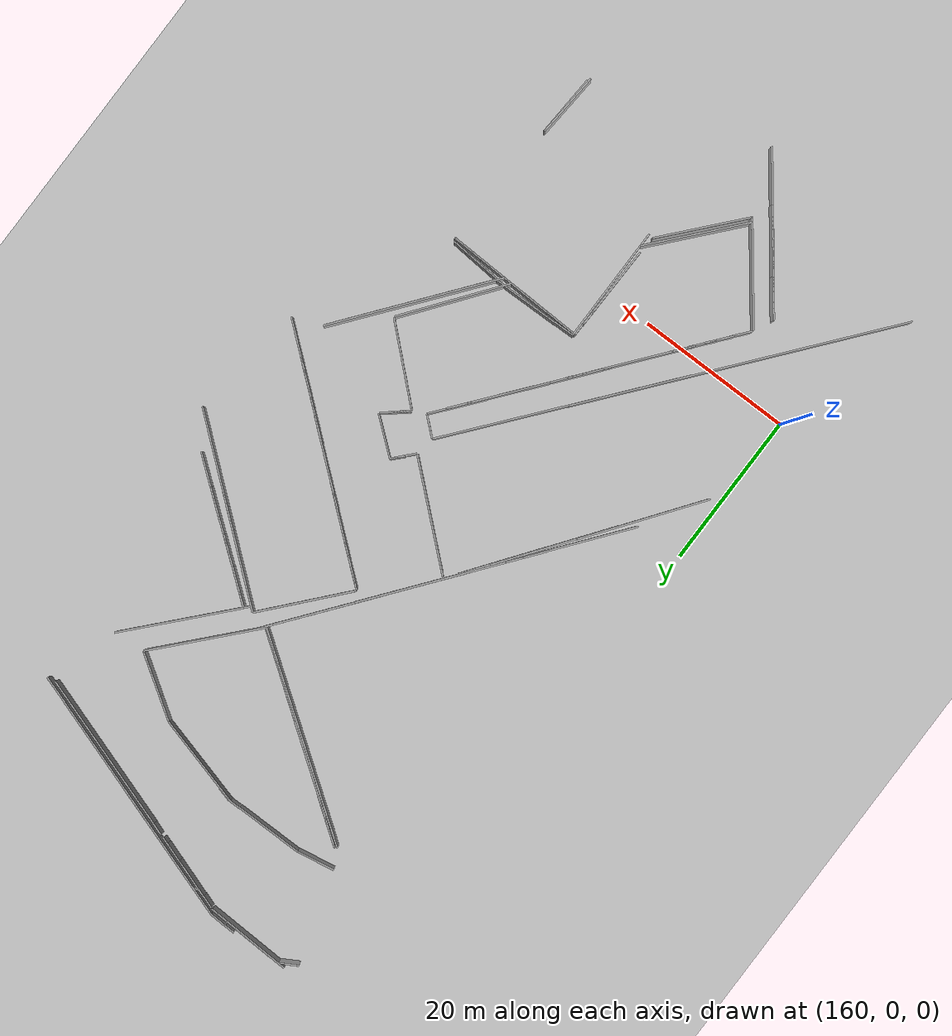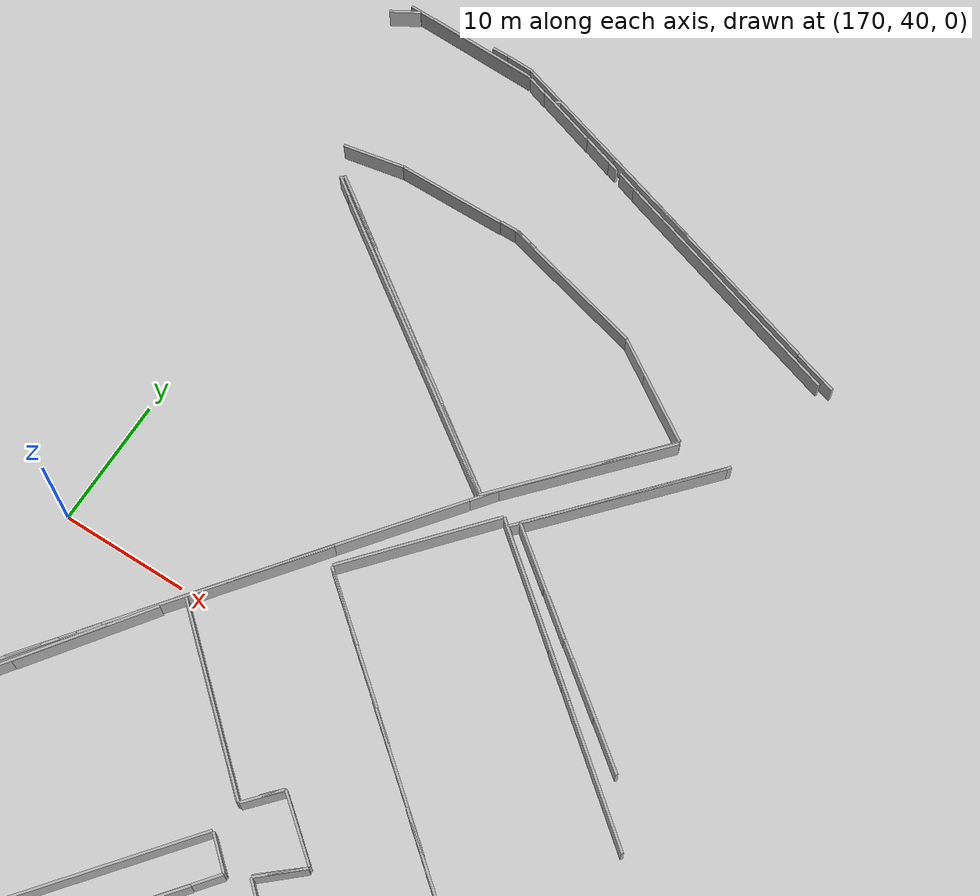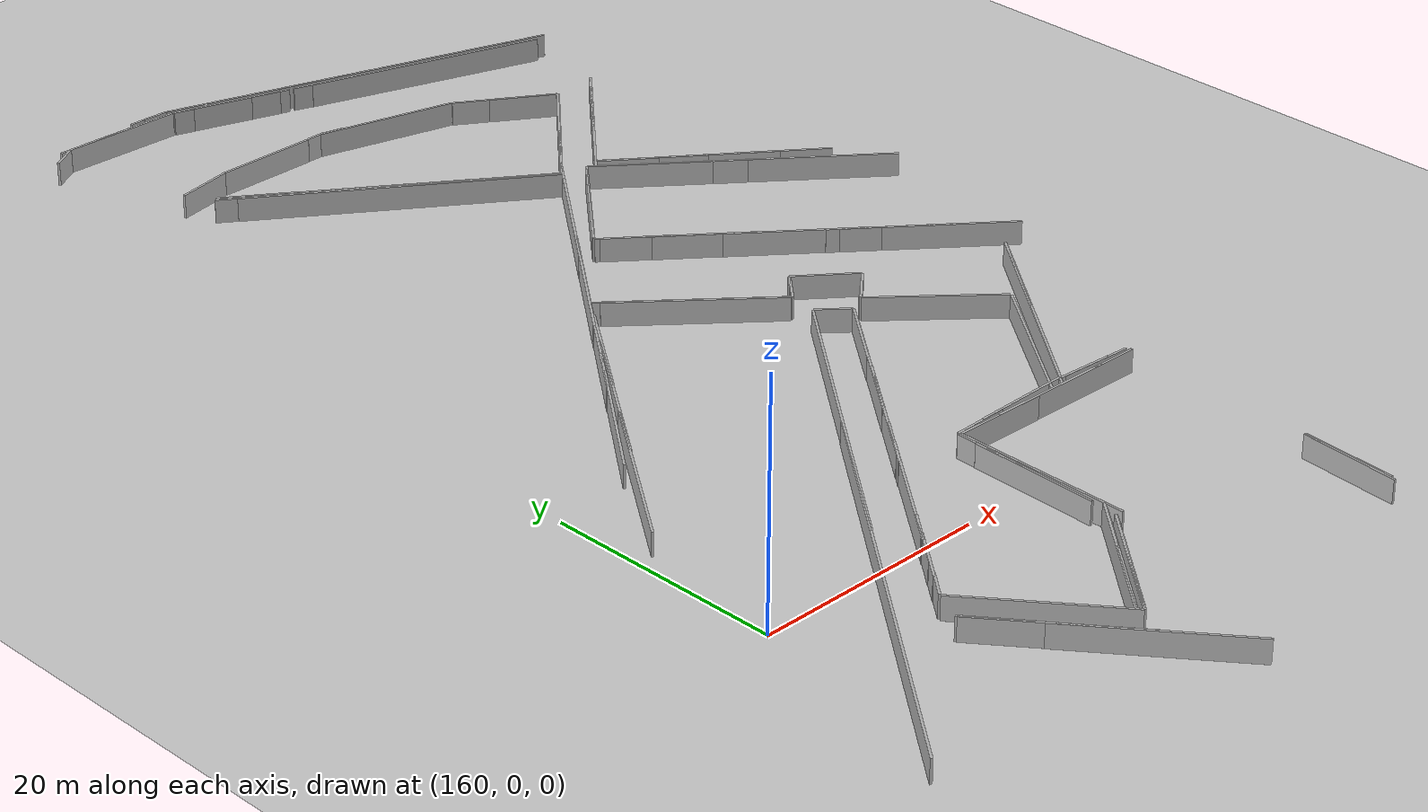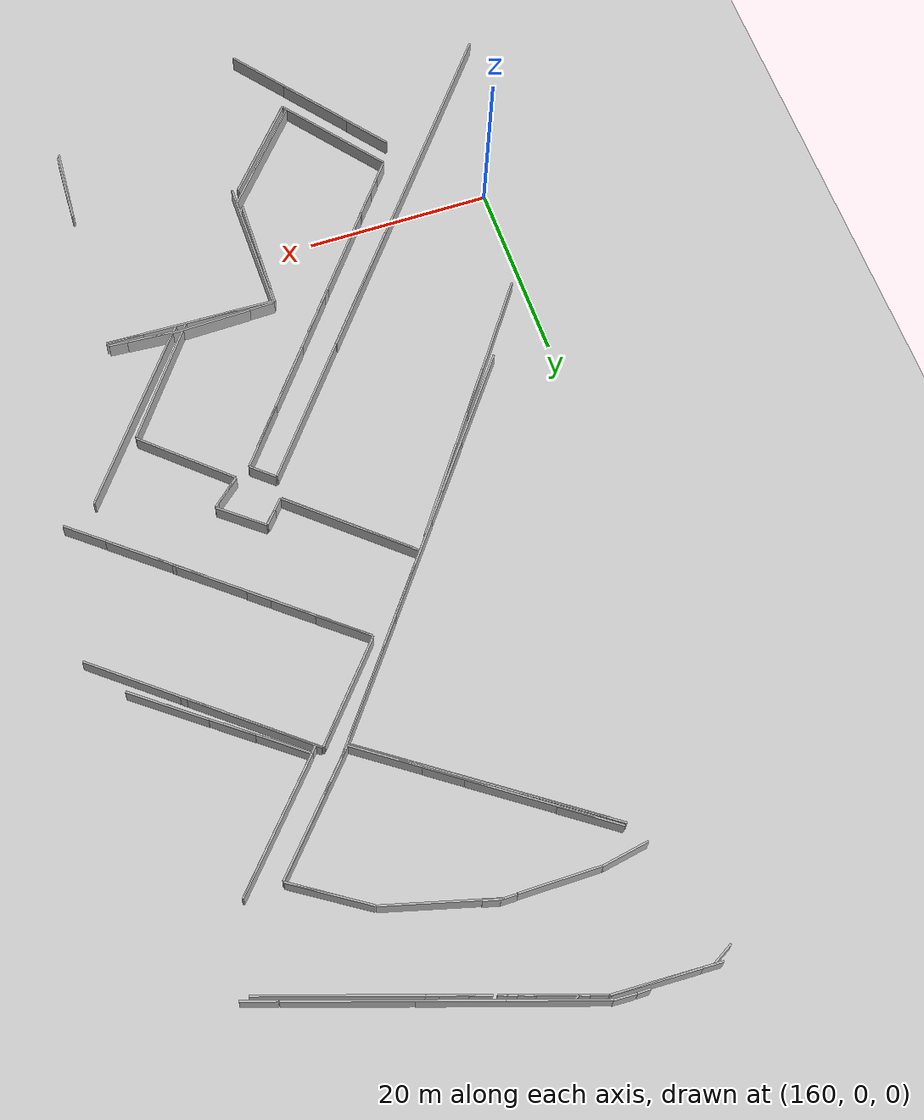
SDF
<sdf version="1.7">
 <world name="slam_world">
  <model name="ground_plane">
   <static>1</static>
   <link name="link">
    <collision name="collision">
     <geometry><plane><normal>0 0 1</normal><size>100 100</size></plane></geometry>
    </collision>
    <visual name="visual">
     <geometry><plane><normal>0 0 1</normal><size>100 100</size></plane></geometry>
     <material>
      <ambient>0.8 0.8 0.8 1</ambient>
      <diffuse>0.8 0.8 0.8 1</diffuse>
      <specular>0.8 0.8 0.8 1</specular>
     </material>
    </visual>
   </link>
  </model>
  <model name="wall_5">
   <static>1</static>
   <pose>182.226 86.725 1 0 -0 0.661043</pose>
   <link name="link">
    <collision name="collision"><geometry><box><size>0.570088 0.2 2</size></box></geometry></collision>
    <visual name="visual">
     <geometry><box><size>0.570088 0.2 2</size></box></geometry>
     <material><ambient>0.5 0.5 0.5 1</ambient><diffuse>0.7 0.7 0.7 1</diffuse></material>
    </visual>
   </link>
  </model>
  <model name="wall_10">
   <static>1</static>
   <pose>183.101 64.65 1 0 0 -0.611022</pose>
   <link name="link">
    <collision name="collision"><geometry><box><size>27.7146 0.2 2</size></box></geometry></collision>
    <visual name="visual">
     <geometry><box><size>27.7146 0.2 2</size></box></geometry>
     <material><ambient>0.5 0.5 0.5 1</ambient><diffuse>0.7 0.7 0.7 1</diffuse></material>
    </visual>
   </link>
  </model>
  <model name="wall_12">
   <static>1</static>
   <pose>168.326 -2.675 1 0 -0 0.889225</pose>
   <link name="link">
    <collision name="collision"><geometry><box><size>42.3006 0.2 2</size></box></geometry></collision>
    <visual name="visual">
     <geometry><box><size>42.3006 0.2 2</size></box></geometry>
     <material><ambient>0.5 0.5 0.5 1</ambient><diffuse>0.7 0.7 0.7 1</diffuse></material>
    </visual>
   </link>
  </model>
  <model name="wall_23">
   <static>1</static>
   <pose>173.651 -12.075 1 0 0 -0.908779</pose>
   <link name="link">
    <collision name="collision"><geometry><box><size>13.5023 0.2 2</size></box></geometry></collision>
    <visual name="visual">
     <geometry><box><size>13.5023 0.2 2</size></box></geometry>
     <material><ambient>0.5 0.5 0.5 1</ambient><diffuse>0.7 0.7 0.7 1</diffuse></material>
    </visual>
   </link>
  </model>
  <model name="wall_32">
   <static>1</static>
   <pose>203.951 15.075 1 0 -0 0.907209</pose>
   <link name="link">
    <collision name="collision"><geometry><box><size>22.4045 0.2 2</size></box></geometry></collision>
    <visual name="visual">
     <geometry><box><size>22.4045 0.2 2</size></box></geometry>
     <material><ambient>0.5 0.5 0.5 1</ambient><diffuse>0.7 0.7 0.7 1</diffuse></material>
    </visual>
   </link>
  </model>
  <model name="wall_33">
   <static>1</static>
   <pose>200.326 12.05 1 0 -0 0.924542</pose>
   <link name="link">
    <collision name="collision"><geometry><box><size>14.5301 0.2 2</size></box></geometry></collision>
    <visual name="visual">
     <geometry><box><size>14.5301 0.2 2</size></box></geometry>
     <material><ambient>0.5 0.5 0.5 1</ambient><diffuse>0.7 0.7 0.7 1</diffuse></material>
    </visual>
   </link>
  </model>
  <model name="wall_34">
   <static>1</static>
   <pose>180.451 38.5 1 0 -0 0.909025</pose>
   <link name="link">
    <collision name="collision"><geometry><box><size>24.084 0.2 2</size></box></geometry></collision>
    <visual name="visual">
     <geometry><box><size>24.084 0.2 2</size></box></geometry>
     <material><ambient>0.5 0.5 0.5 1</ambient><diffuse>0.7 0.7 0.7 1</diffuse></material>
    </visual>
   </link>
  </model>
  <model name="wall_37">
   <static>1</static>
   <pose>202.376 51.8 1 0 0 -0.682488</pose>
   <link name="link">
    <collision name="collision"><geometry><box><size>14.1107 0.2 2</size></box></geometry></collision>
    <visual name="visual">
     <geometry><box><size>14.1107 0.2 2</size></box></geometry>
     <material><ambient>0.5 0.5 0.5 1</ambient><diffuse>0.7 0.7 0.7 1</diffuse></material>
    </visual>
   </link>
  </model>
  <model name="wall_46">
   <static>1</static>
   <pose>181.951 -11.775 1 0 -0 0.855778</pose>
   <link name="link">
    <collision name="collision"><geometry><box><size>13.5747 0.2 2</size></box></geometry></collision>
    <visual name="visual">
     <geometry><box><size>13.5747 0.2 2</size></box></geometry>
     <material><ambient>0.5 0.5 0.5 1</ambient><diffuse>0.7 0.7 0.7 1</diffuse></material>
    </visual>
   </link>
  </model>
  <model name="wall_50">
   <static>1</static>
   <pose>200.851 80.325 1 0 0 -0.316411</pose>
   <link name="link">
    <collision name="collision"><geometry><box><size>20.729 0.2 2</size></box></geometry></collision>
    <visual name="visual">
     <geometry><box><size>20.729 0.2 2</size></box></geometry>
     <material><ambient>0.5 0.5 0.5 1</ambient><diffuse>0.7 0.7 0.7 1</diffuse></material>
    </visual>
   </link>
  </model>
  <model name="wall_57">
   <static>1</static>
   <pose>186.926 34.275 1 0 0 -0.715419</pose>
   <link name="link">
    <collision name="collision"><geometry><box><size>15.1692 0.2 2</size></box></geometry></collision>
    <visual name="visual">
     <geometry><box><size>15.1692 0.2 2</size></box></geometry>
     <material><ambient>0.5 0.5 0.5 1</ambient><diffuse>0.7 0.7 0.7 1</diffuse></material>
    </visual>
   </link>
  </model>
  <model name="wall_72">
   <static>1</static>
   <pose>198.351 81.675 1 0 0 -0.316411</pose>
   <link name="link">
    <collision name="collision"><geometry><box><size>20.729 0.2 2</size></box></geometry></collision>
    <visual name="visual">
     <geometry><box><size>20.729 0.2 2</size></box></geometry>
     <material><ambient>0.5 0.5 0.5 1</ambient><diffuse>0.7 0.7 0.7 1</diffuse></material>
    </visual>
   </link>
  </model>
  <model name="wall_73">
   <static>1</static>
   <pose>171.551 27 1 0 -0 0.909753</pose>
   <link name="link">
    <collision name="collision"><geometry><box><size>17.1026 0.2 2</size></box></geometry></collision>
    <visual name="visual">
     <geometry><box><size>17.1026 0.2 2</size></box></geometry>
     <material><ambient>0.5 0.5 0.5 1</ambient><diffuse>0.7 0.7 0.7 1</diffuse></material>
    </visual>
   </link>
  </model>
  <model name="wall_83">
   <static>1</static>
   <pose>182.251 14.425 1 0 -0 0.889167</pose>
   <link name="link">
    <collision name="collision"><geometry><box><size>31.7431 0.2 2</size></box></geometry></collision>
    <visual name="visual">
     <geometry><box><size>31.7431 0.2 2</size></box></geometry>
     <material><ambient>0.5 0.5 0.5 1</ambient><diffuse>0.7 0.7 0.7 1</diffuse></material>
    </visual>
   </link>
  </model>
  <model name="wall_85">
   <static>1</static>
   <pose>186.476 46.275 1 0 -0 0.909042</pose>
   <link name="link">
    <collision name="collision"><geometry><box><size>24.6541 0.2 2</size></box></geometry></collision>
    <visual name="visual">
     <geometry><box><size>24.6541 0.2 2</size></box></geometry>
     <material><ambient>0.5 0.5 0.5 1</ambient><diffuse>0.7 0.7 0.7 1</diffuse></material>
    </visual>
   </link>
  </model>
  <model name="wall_115">
   <static>1</static>
   <pose>179.651 67.35 1 0 0 -0.613915</pose>
   <link name="link">
    <collision name="collision"><geometry><box><size>12.8456 0.2 2</size></box></geometry></collision>
    <visual name="visual">
     <geometry><box><size>12.8456 0.2 2</size></box></geometry>
     <material><ambient>0.5 0.5 0.5 1</ambient><diffuse>0.7 0.7 0.7 1</diffuse></material>
    </visual>
   </link>
  </model>
  <model name="wall_122">
   <static>1</static>
   <pose>186.401 -0.825 1 0 -0 1.5708</pose>
   <link name="link">
    <collision name="collision"><geometry><box><size>15.15 0.2 2</size></box></geometry></collision>
    <visual name="visual">
     <geometry><box><size>15.15 0.2 2</size></box></geometry>
     <material><ambient>0.5 0.5 0.5 1</ambient><diffuse>0.7 0.7 0.7 1</diffuse></material>
    </visual>
   </link>
  </model>
  <model name="wall_128">
   <static>1</static>
   <pose>189.176 17.95 1 0 -0 0.893014</pose>
   <link name="link">
    <collision name="collision"><geometry><box><size>12.8375 0.2 2</size></box></geometry></collision>
    <visual name="visual">
     <geometry><box><size>12.8375 0.2 2</size></box></geometry>
     <material><ambient>0.5 0.5 0.5 1</ambient><diffuse>0.7 0.7 0.7 1</diffuse></material>
    </visual>
   </link>
  </model>
  <model name="wall_133">
   <static>1</static>
   <pose>199.426 62.275 1 0 -0 0.837238</pose>
   <link name="link">
    <collision name="collision"><geometry><box><size>15.0108 0.2 2</size></box></geometry></collision>
    <visual name="visual">
     <geometry><box><size>15.0108 0.2 2</size></box></geometry>
     <material><ambient>0.5 0.5 0.5 1</ambient><diffuse>0.7 0.7 0.7 1</diffuse></material>
    </visual>
   </link>
  </model>
  <model name="wall_141">
   <static>1</static>
   <pose>192.676 51.5 1 0 -0 0.855705</pose>
   <link name="link">
    <collision name="collision"><geometry><box><size>12.5822 0.2 2</size></box></geometry></collision>
    <visual name="visual">
     <geometry><box><size>12.5822 0.2 2</size></box></geometry>
     <material><ambient>0.5 0.5 0.5 1</ambient><diffuse>0.7 0.7 0.7 1</diffuse></material>
    </visual>
   </link>
  </model>
  <model name="wall_142">
   <static>1</static>
   <pose>188.801 60.85 1 0 0 -0.613638</pose>
   <link name="link">
    <collision name="collision"><geometry><box><size>14.0663 0.2 2</size></box></geometry></collision>
    <visual name="visual">
     <geometry><box><size>14.0663 0.2 2</size></box></geometry>
     <material><ambient>0.5 0.5 0.5 1</ambient><diffuse>0.7 0.7 0.7 1</diffuse></material>
    </visual>
   </link>
  </model>
  <model name="wall_143">
   <static>1</static>
   <pose>203.276 62.35 1 0 -0 0.837038</pose>
   <link name="link">
    <collision name="collision"><geometry><box><size>15.7541 0.2 2</size></box></geometry></collision>
    <visual name="visual">
     <geometry><box><size>15.7541 0.2 2</size></box></geometry>
     <material><ambient>0.5 0.5 0.5 1</ambient><diffuse>0.7 0.7 0.7 1</diffuse></material>
    </visual>
   </link>
  </model>
  <model name="wall_148">
   <static>1</static>
   <pose>172.576 -14.675 1 0 0 -0.909115</pose>
   <link name="link">
    <collision name="collision"><geometry><box><size>13.7523 0.2 2</size></box></geometry></collision>
    <visual name="visual">
     <geometry><box><size>13.7523 0.2 2</size></box></geometry>
     <material><ambient>0.5 0.5 0.5 1</ambient><diffuse>0.7 0.7 0.7 1</diffuse></material>
    </visual>
   </link>
  </model>
  <model name="wall_157">
   <static>1</static>
   <pose>187.676 85.175 1 0 0 -0.314818</pose>
   <link name="link">
    <collision name="collision"><geometry><box><size>18.2468 0.2 2</size></box></geometry></collision>
    <visual name="visual">
     <geometry><box><size>18.2468 0.2 2</size></box></geometry>
     <material><ambient>0.5 0.5 0.5 1</ambient><diffuse>0.7 0.7 0.7 1</diffuse></material>
    </visual>
   </link>
  </model>
  <model name="wall_158">
   <static>1</static>
   <pose>185.026 12.75 1 0 -0 0.893014</pose>
   <link name="link">
    <collision name="collision"><geometry><box><size>12.8375 0.2 2</size></box></geometry></collision>
    <visual name="visual">
     <geometry><box><size>12.8375 0.2 2</size></box></geometry>
     <material><ambient>0.5 0.5 0.5 1</ambient><diffuse>0.7 0.7 0.7 1</diffuse></material>
    </visual>
   </link>
  </model>
  <model name="wall_170">
   <static>1</static>
   <pose>200.576 36.775 1 0 0 -0.683838</pose>
   <link name="link">
    <collision name="collision"><geometry><box><size>11.1591 0.2 2</size></box></geometry></collision>
    <visual name="visual">
     <geometry><box><size>11.1591 0.2 2</size></box></geometry>
     <material><ambient>0.5 0.5 0.5 1</ambient><diffuse>0.7 0.7 0.7 1</diffuse></material>
    </visual>
   </link>
  </model>
  <model name="wall_173">
   <static>1</static>
   <pose>181.726 -12.1 1 0 -0 0.854924</pose>
   <link name="link">
    <collision name="collision"><geometry><box><size>12.7233 0.2 2</size></box></geometry></collision>
    <visual name="visual">
     <geometry><box><size>12.7233 0.2 2</size></box></geometry>
     <material><ambient>0.5 0.5 0.5 1</ambient><diffuse>0.7 0.7 0.7 1</diffuse></material>
    </visual>
   </link>
  </model>
  <model name="wall_179">
   <static>1</static>
   <pose>201.626 53.725 1 0 0 -0.661997</pose>
   <link name="link">
    <collision name="collision"><geometry><box><size>9.19157 0.2 2</size></box></geometry></collision>
    <visual name="visual">
     <geometry><box><size>9.19157 0.2 2</size></box></geometry>
     <material><ambient>0.5 0.5 0.5 1</ambient><diffuse>0.7 0.7 0.7 1</diffuse></material>
    </visual>
   </link>
  </model>
  <model name="wall_181">
   <static>1</static>
   <pose>197.526 6.225 1 0 0 -0.031568</pose>
   <link name="link">
    <collision name="collision"><geometry><box><size>14.2571 0.2 2</size></box></geometry></collision>
    <visual name="visual">
     <geometry><box><size>14.2571 0.2 2</size></box></geometry>
     <material><ambient>0.5 0.5 0.5 1</ambient><diffuse>0.7 0.7 0.7 1</diffuse></material>
    </visual>
   </link>
  </model>
  <model name="wall_182">
   <static>1</static>
   <pose>209.976 77.85 1 0 0 -0.308651</pose>
   <link name="link">
    <collision name="collision"><geometry><box><size>3.62112 0.2 2</size></box></geometry></collision>
    <visual name="visual">
     <geometry><box><size>3.62112 0.2 2</size></box></geometry>
     <material><ambient>0.5 0.5 0.5 1</ambient><diffuse>0.7 0.7 0.7 1</diffuse></material>
    </visual>
   </link>
  </model>
  <model name="wall_187">
   <static>1</static>
   <pose>200.501 21.775 1 0 0 -0.732157</pose>
   <link name="link">
    <collision name="collision"><geometry><box><size>11.2944 0.2 2</size></box></geometry></collision>
    <visual name="visual">
     <geometry><box><size>11.2944 0.2 2</size></box></geometry>
     <material><ambient>0.5 0.5 0.5 1</ambient><diffuse>0.7 0.7 0.7 1</diffuse></material>
    </visual>
   </link>
  </model>
  <model name="wall_189">
   <static>1</static>
   <pose>179.651 75.8 1 0 -0 0</pose>
   <link name="link">
    <collision name="collision"><geometry><box><size>8.7 0.2 2</size></box></geometry></collision>
    <visual name="visual">
     <geometry><box><size>8.7 0.2 2</size></box></geometry>
     <material><ambient>0.5 0.5 0.5 1</ambient><diffuse>0.7 0.7 0.7 1</diffuse></material>
    </visual>
   </link>
  </model>
  <model name="wall_195">
   <static>1</static>
   <pose>191.151 74.3 1 0 0 -0.261139</pose>
   <link name="link">
    <collision name="collision"><geometry><box><size>12.0071 0.2 2</size></box></geometry></collision>
    <visual name="visual">
     <geometry><box><size>12.0071 0.2 2</size></box></geometry>
     <material><ambient>0.5 0.5 0.5 1</ambient><diffuse>0.7 0.7 0.7 1</diffuse></material>
    </visual>
   </link>
  </model>
  <model name="wall_221">
   <static>1</static>
   <pose>183.826 64.1 1 0 0 -0.611515</pose>
   <link name="link">
    <collision name="collision"><geometry><box><size>25.9533 0.2 2</size></box></geometry></collision>
    <visual name="visual">
     <geometry><box><size>25.9533 0.2 2</size></box></geometry>
     <material><ambient>0.5 0.5 0.5 1</ambient><diffuse>0.7 0.7 0.7 1</diffuse></material>
    </visual>
   </link>
  </model>
  <model name="wall_223">
   <static>1</static>
   <pose>173.701 87.65 1 0 0 -0.03602</pose>
   <link name="link">
    <collision name="collision"><geometry><box><size>11.1072 0.2 2</size></box></geometry></collision>
    <visual name="visual">
     <geometry><box><size>11.1072 0.2 2</size></box></geometry>
     <material><ambient>0.5 0.5 0.5 1</ambient><diffuse>0.7 0.7 0.7 1</diffuse></material>
    </visual>
   </link>
  </model>
  <model name="wall_224">
   <static>1</static>
   <pose>209.901 47.375 1 0 0 -0.659536</pose>
   <link name="link">
    <collision name="collision"><geometry><box><size>8.73112 0.2 2</size></box></geometry></collision>
    <visual name="visual">
     <geometry><box><size>8.73112 0.2 2</size></box></geometry>
     <material><ambient>0.5 0.5 0.5 1</ambient><diffuse>0.7 0.7 0.7 1</diffuse></material>
    </visual>
   </link>
  </model>
  <model name="wall_226">
   <static>1</static>
   <pose>181.801 -12.85 1 0 -0 0.855053</pose>
   <link name="link">
    <collision name="collision"><geometry><box><size>12.1918 0.2 2</size></box></geometry></collision>
    <visual name="visual">
     <geometry><box><size>12.1918 0.2 2</size></box></geometry>
     <material><ambient>0.5 0.5 0.5 1</ambient><diffuse>0.7 0.7 0.7 1</diffuse></material>
    </visual>
   </link>
  </model>
  <model name="wall_235">
   <static>1</static>
   <pose>186.051 -0.55 1 0 -0 1.55245</pose>
   <link name="link">
    <collision name="collision"><geometry><box><size>10.9018 0.2 2</size></box></geometry></collision>
    <visual name="visual">
     <geometry><box><size>10.9018 0.2 2</size></box></geometry>
     <material><ambient>0.5 0.5 0.5 1</ambient><diffuse>0.7 0.7 0.7 1</diffuse></material>
    </visual>
   </link>
  </model>
  <model name="wall_237">
   <static>1</static>
   <pose>210.201 28.85 1 0 0 -0.683191</pose>
   <link name="link">
    <collision name="collision"><geometry><box><size>11.0887 0.2 2</size></box></geometry></collision>
    <visual name="visual">
     <geometry><box><size>11.0887 0.2 2</size></box></geometry>
     <material><ambient>0.5 0.5 0.5 1</ambient><diffuse>0.7 0.7 0.7 1</diffuse></material>
    </visual>
   </link>
  </model>
  <model name="wall_240">
   <static>1</static>
   <pose>200.701 70.3 1 0 0 -0.575425</pose>
   <link name="link">
    <collision name="collision"><geometry><box><size>8.82043 0.2 2</size></box></geometry></collision>
    <visual name="visual">
     <geometry><box><size>8.82043 0.2 2</size></box></geometry>
     <material><ambient>0.5 0.5 0.5 1</ambient><diffuse>0.7 0.7 0.7 1</diffuse></material>
    </visual>
   </link>
  </model>
  <model name="wall_255">
   <static>1</static>
   <pose>207.101 31.4 1 0 0 -0.682818</pose>
   <link name="link">
    <collision name="collision"><geometry><box><size>9.66747 0.2 2</size></box></geometry></collision>
    <visual name="visual">
     <geometry><box><size>9.66747 0.2 2</size></box></geometry>
     <material><ambient>0.5 0.5 0.5 1</ambient><diffuse>0.7 0.7 0.7 1</diffuse></material>
    </visual>
   </link>
  </model>
  <model name="wall_260">
   <static>1</static>
   <pose>192.901 43.1 1 0 0 -0.683709</pose>
   <link name="link">
    <collision name="collision"><geometry><box><size>10.4484 0.2 2</size></box></geometry></collision>
    <visual name="visual">
     <geometry><box><size>10.4484 0.2 2</size></box></geometry>
     <material><ambient>0.5 0.5 0.5 1</ambient><diffuse>0.7 0.7 0.7 1</diffuse></material>
    </visual>
   </link>
  </model>
  <model name="wall_274">
   <static>1</static>
   <pose>166.326 19.15 1 0 -0 0.94046</pose>
   <link name="link">
    <collision name="collision"><geometry><box><size>16.7114 0.2 2</size></box></geometry></collision>
    <visual name="visual">
     <geometry><box><size>16.7114 0.2 2</size></box></geometry>
     <material><ambient>0.5 0.5 0.5 1</ambient><diffuse>0.7 0.7 0.7 1</diffuse></material>
    </visual>
   </link>
  </model>
  <model name="wall_275">
   <static>1</static>
   <pose>183.401 86.075 1 0 0 -0.324809</pose>
   <link name="link">
    <collision name="collision"><geometry><box><size>5.17035 0.2 2</size></box></geometry></collision>
    <visual name="visual">
     <geometry><box><size>5.17035 0.2 2</size></box></geometry>
     <material><ambient>0.5 0.5 0.5 1</ambient><diffuse>0.7 0.7 0.7 1</diffuse></material>
    </visual>
   </link>
  </model>
  <model name="wall_282">
   <static>1</static>
   <pose>206.276 50.15 1 0 0 -0.659629</pose>
   <link name="link">
    <collision name="collision"><geometry><box><size>9.30121 0.2 2</size></box></geometry></collision>
    <visual name="visual">
     <geometry><box><size>9.30121 0.2 2</size></box></geometry>
     <material><ambient>0.5 0.5 0.5 1</ambient><diffuse>0.7 0.7 0.7 1</diffuse></material>
    </visual>
   </link>
  </model>
  <model name="wall_292">
   <static>1</static>
   <pose>172.851 28.025 1 0 -0 0.940194</pose>
   <link name="link">
    <collision name="collision"><geometry><box><size>16.2814 0.2 2</size></box></geometry></collision>
    <visual name="visual">
     <geometry><box><size>16.2814 0.2 2</size></box></geometry>
     <material><ambient>0.5 0.5 0.5 1</ambient><diffuse>0.7 0.7 0.7 1</diffuse></material>
    </visual>
   </link>
  </model>
  <model name="wall_311">
   <static>1</static>
   <pose>191.426 58.975 1 0 0 -0.612388</pose>
   <link name="link">
    <collision name="collision"><geometry><box><size>7.39358 0.2 2</size></box></geometry></collision>
    <visual name="visual">
     <geometry><box><size>7.39358 0.2 2</size></box></geometry>
     <material><ambient>0.5 0.5 0.5 1</ambient><diffuse>0.7 0.7 0.7 1</diffuse></material>
    </visual>
   </link>
  </model>
  <model name="wall_312">
   <static>1</static>
   <pose>187.101 34.05 1 0 0 -0.716878</pose>
   <link name="link">
    <collision name="collision"><geometry><box><size>14.4589 0.2 2</size></box></geometry></collision>
    <visual name="visual">
     <geometry><box><size>14.4589 0.2 2</size></box></geometry>
     <material><ambient>0.5 0.5 0.5 1</ambient><diffuse>0.7 0.7 0.7 1</diffuse></material>
    </visual>
   </link>
  </model>
  <model name="wall_323">
   <static>1</static>
   <pose>178.126 4.1 1 0 -0 0.893014</pose>
   <link name="link">
    <collision name="collision"><geometry><box><size>12.8375 0.2 2</size></box></geometry></collision>
    <visual name="visual">
     <geometry><box><size>12.8375 0.2 2</size></box></geometry>
     <material><ambient>0.5 0.5 0.5 1</ambient><diffuse>0.7 0.7 0.7 1</diffuse></material>
    </visual>
   </link>
  </model>
  <model name="wall_327">
   <static>1</static>
   <pose>190.626 51.625 1 0 -0 0.907515</pose>
   <link name="link">
    <collision name="collision"><geometry><box><size>15.6731 0.2 2</size></box></geometry></collision>
    <visual name="visual">
     <geometry><box><size>15.6731 0.2 2</size></box></geometry>
     <material><ambient>0.5 0.5 0.5 1</ambient><diffuse>0.7 0.7 0.7 1</diffuse></material>
    </visual>
   </link>
  </model>
  <model name="wall_336">
   <static>1</static>
   <pose>193.376 6.925 1 0 -0 0.017339</pose>
   <link name="link">
    <collision name="collision"><geometry><box><size>8.6513 0.2 2</size></box></geometry></collision>
    <visual name="visual">
     <geometry><box><size>8.6513 0.2 2</size></box></geometry>
     <material><ambient>0.5 0.5 0.5 1</ambient><diffuse>0.7 0.7 0.7 1</diffuse></material>
    </visual>
   </link>
  </model>
  <model name="wall_337">
   <static>1</static>
   <pose>190.326 6.425 1 0 0 -0.030294</pose>
   <link name="link">
    <collision name="collision"><geometry><box><size>8.25379 0.2 2</size></box></geometry></collision>
    <visual name="visual">
     <geometry><box><size>8.25379 0.2 2</size></box></geometry>
     <material><ambient>0.5 0.5 0.5 1</ambient><diffuse>0.7 0.7 0.7 1</diffuse></material>
    </visual>
   </link>
  </model>
  <model name="wall_344">
   <static>1</static>
   <pose>204.151 15.275 1 0 -0 0.907885</pose>
   <link name="link">
    <collision name="collision"><geometry><box><size>21.124 0.2 2</size></box></geometry></collision>
    <visual name="visual">
     <geometry><box><size>21.124 0.2 2</size></box></geometry>
     <material><ambient>0.5 0.5 0.5 1</ambient><diffuse>0.7 0.7 0.7 1</diffuse></material>
    </visual>
   </link>
  </model>
  <model name="wall_345">
   <static>1</static>
   <pose>174.676 87.65 1 0 0 -0.033885</pose>
   <link name="link">
    <collision name="collision"><geometry><box><size>8.85508 0.2 2</size></box></geometry></collision>
    <visual name="visual">
     <geometry><box><size>8.85508 0.2 2</size></box></geometry>
     <material><ambient>0.5 0.5 0.5 1</ambient><diffuse>0.7 0.7 0.7 1</diffuse></material>
    </visual>
   </link>
  </model>
  <model name="wall_357">
   <static>1</static>
   <pose>186.951 84.9 1 0 0 -0.333244</pose>
   <link name="link">
    <collision name="collision"><geometry><box><size>2.75136 0.2 2</size></box></geometry></collision>
    <visual name="visual">
     <geometry><box><size>2.75136 0.2 2</size></box></geometry>
     <material><ambient>0.5 0.5 0.5 1</ambient><diffuse>0.7 0.7 0.7 1</diffuse></material>
    </visual>
   </link>
  </model>
  <model name="wall_365">
   <static>1</static>
   <pose>192.251 21.825 1 0 -0 0.893974</pose>
   <link name="link">
    <collision name="collision"><geometry><box><size>7.50417 0.2 2</size></box></geometry></collision>
    <visual name="visual">
     <geometry><box><size>7.50417 0.2 2</size></box></geometry>
     <material><ambient>0.5 0.5 0.5 1</ambient><diffuse>0.7 0.7 0.7 1</diffuse></material>
    </visual>
   </link>
  </model>
  <model name="wall_367">
   <static>1</static>
   <pose>193.801 30.525 1 0 -0 0.83911</pose>
   <link name="link">
    <collision name="collision"><geometry><box><size>3.29279 0.2 2</size></box></geometry></collision>
    <visual name="visual">
     <geometry><box><size>3.29279 0.2 2</size></box></geometry>
     <material><ambient>0.5 0.5 0.5 1</ambient><diffuse>0.7 0.7 0.7 1</diffuse></material>
    </visual>
   </link>
  </model>
  <model name="wall_368">
   <static>1</static>
   <pose>197.026 30 1 0 0 -0.677538</pose>
   <link name="link">
    <collision name="collision"><geometry><box><size>5.58323 0.2 2</size></box></geometry></collision>
    <visual name="visual">
     <geometry><box><size>5.58323 0.2 2</size></box></geometry>
     <material><ambient>0.5 0.5 0.5 1</ambient><diffuse>0.7 0.7 0.7 1</diffuse></material>
    </visual>
   </link>
  </model>
  <model name="wall_375">
   <static>1</static>
   <pose>174.726 70.875 1 0 0 -0.615023</pose>
   <link name="link">
    <collision name="collision"><geometry><box><size>6.67271 0.2 2</size></box></geometry></collision>
    <visual name="visual">
     <geometry><box><size>6.67271 0.2 2</size></box></geometry>
     <material><ambient>0.5 0.5 0.5 1</ambient><diffuse>0.7 0.7 0.7 1</diffuse></material>
    </visual>
   </link>
  </model>
  <model name="wall_376">
   <static>1</static>
   <pose>199.526 62.3 1 0 -0 0.835957</pose>
   <link name="link">
    <collision name="collision"><geometry><box><size>14.6912 0.2 2</size></box></geometry></collision>
    <visual name="visual">
     <geometry><box><size>14.6912 0.2 2</size></box></geometry>
     <material><ambient>0.5 0.5 0.5 1</ambient><diffuse>0.7 0.7 0.7 1</diffuse></material>
    </visual>
   </link>
  </model>
  <model name="wall_388">
   <static>1</static>
   <pose>203.501 -14.775 1 0 -0 1.49906</pose>
   <link name="link">
    <collision name="collision"><geometry><box><size>8.37153 0.2 2</size></box></geometry></collision>
    <visual name="visual">
     <geometry><box><size>8.37153 0.2 2</size></box></geometry>
     <material><ambient>0.5 0.5 0.5 1</ambient><diffuse>0.7 0.7 0.7 1</diffuse></material>
    </visual>
   </link>
  </model>
  <model name="wall_392">
   <static>1</static>
   <pose>195.476 40.975 1 0 0 -0.682587</pose>
   <link name="link">
    <collision name="collision"><geometry><box><size>8.95684 0.2 2</size></box></geometry></collision>
    <visual name="visual">
     <geometry><box><size>8.95684 0.2 2</size></box></geometry>
     <material><ambient>0.5 0.5 0.5 1</ambient><diffuse>0.7 0.7 0.7 1</diffuse></material>
    </visual>
   </link>
  </model>
  <model name="wall_400">
   <static>1</static>
   <pose>173.001 75.375 1 0 -0 0.180926</pose>
   <link name="link">
    <collision name="collision"><geometry><box><size>5.0697 0.2 2</size></box></geometry></collision>
    <visual name="visual">
     <geometry><box><size>5.0697 0.2 2</size></box></geometry>
     <material><ambient>0.5 0.5 0.5 1</ambient><diffuse>0.7 0.7 0.7 1</diffuse></material>
    </visual>
   </link>
  </model>
  <model name="wall_406">
   <static>1</static>
   <pose>201.251 6.625 1 0 0 -0.070197</pose>
   <link name="link">
    <collision name="collision"><geometry><box><size>6.4158 0.2 2</size></box></geometry></collision>
    <visual name="visual">
     <geometry><box><size>6.4158 0.2 2</size></box></geometry>
     <material><ambient>0.5 0.5 0.5 1</ambient><diffuse>0.7 0.7 0.7 1</diffuse></material>
    </visual>
   </link>
  </model>
  <model name="wall_407">
   <static>1</static>
   <pose>190.901 44.75 1 0 0 -0.679909</pose>
   <link name="link">
    <collision name="collision"><geometry><box><size>6.04401 0.2 2</size></box></geometry></collision>
    <visual name="visual">
     <geometry><box><size>6.04401 0.2 2</size></box></geometry>
     <material><ambient>0.5 0.5 0.5 1</ambient><diffuse>0.7 0.7 0.7 1</diffuse></material>
    </visual>
   </link>
  </model>
  <model name="wall_415">
   <static>1</static>
   <pose>172.076 -3.475 1 0 -0 0.881257</pose>
   <link name="link">
    <collision name="collision"><geometry><box><size>3.69391 0.2 2</size></box></geometry></collision>
    <visual name="visual">
     <geometry><box><size>3.69391 0.2 2</size></box></geometry>
     <material><ambient>0.5 0.5 0.5 1</ambient><diffuse>0.7 0.7 0.7 1</diffuse></material>
    </visual>
   </link>
  </model>
  <model name="wall_419">
   <static>1</static>
   <pose>200.051 54.9 1 0 0 -0.65931</pose>
   <link name="link">
    <collision name="collision"><geometry><box><size>5.06063 0.2 2</size></box></geometry></collision>
    <visual name="visual">
     <geometry><box><size>5.06063 0.2 2</size></box></geometry>
     <material><ambient>0.5 0.5 0.5 1</ambient><diffuse>0.7 0.7 0.7 1</diffuse></material>
    </visual>
   </link>
  </model>
  <model name="wall_420">
   <static>1</static>
   <pose>188.676 6.8 1 0 -0 0.02105</pose>
   <link name="link">
    <collision name="collision"><geometry><box><size>4.75105 0.2 2</size></box></geometry></collision>
    <visual name="visual">
     <geometry><box><size>4.75105 0.2 2</size></box></geometry>
     <material><ambient>0.5 0.5 0.5 1</ambient><diffuse>0.7 0.7 0.7 1</diffuse></material>
    </visual>
   </link>
  </model>
  <model name="wall_421">
   <static>1</static>
   <pose>197.751 26.875 1 0 -0 0.721266</pose>
   <link name="link">
    <collision name="collision"><geometry><box><size>3.86167 0.2 2</size></box></geometry></collision>
    <visual name="visual">
     <geometry><box><size>3.86167 0.2 2</size></box></geometry>
     <material><ambient>0.5 0.5 0.5 1</ambient><diffuse>0.7 0.7 0.7 1</diffuse></material>
    </visual>
   </link>
  </model>
  <model name="wall_437">
   <static>1</static>
   <pose>176.476 -19.725 1 0 0 -0.909164</pose>
   <link name="link">
    <collision name="collision"><geometry><box><size>14.8924 0.2 2</size></box></geometry></collision>
    <visual name="visual">
     <geometry><box><size>14.8924 0.2 2</size></box></geometry>
     <material><ambient>0.5 0.5 0.5 1</ambient><diffuse>0.7 0.7 0.7 1</diffuse></material>
    </visual>
   </link>
  </model>
  <model name="wall_444">
   <static>1</static>
   <pose>193.476 25.775 1 0 0 -0.714091</pose>
   <link name="link">
    <collision name="collision"><geometry><box><size>2.97742 0.2 2</size></box></geometry></collision>
    <visual name="visual">
     <geometry><box><size>2.97742 0.2 2</size></box></geometry>
     <material><ambient>0.5 0.5 0.5 1</ambient><diffuse>0.7 0.7 0.7 1</diffuse></material>
    </visual>
   </link>
  </model>
  <model name="wall_450">
   <static>1</static>
   <pose>206.576 48.35 1 0 0 -0.671391</pose>
   <link name="link">
    <collision name="collision"><geometry><box><size>4.66181 0.2 2</size></box></geometry></collision>
    <visual name="visual">
     <geometry><box><size>4.66181 0.2 2</size></box></geometry>
     <material><ambient>0.5 0.5 0.5 1</ambient><diffuse>0.7 0.7 0.7 1</diffuse></material>
    </visual>
   </link>
  </model>
  <model name="wall_453">
   <static>1</static>
   <pose>178.001 88.05 1 0 0 -0.043451</pose>
   <link name="link">
    <collision name="collision"><geometry><box><size>2.30217 0.2 2</size></box></geometry></collision>
    <visual name="visual">
     <geometry><box><size>2.30217 0.2 2</size></box></geometry>
     <material><ambient>0.5 0.5 0.5 1</ambient><diffuse>0.7 0.7 0.7 1</diffuse></material>
    </visual>
   </link>
  </model>
  <model name="wall_459">
   <static>1</static>
   <pose>203.626 -14.6 1 0 -0 1.5139</pose>
   <link name="link">
    <collision name="collision"><geometry><box><size>7.91281 0.2 2</size></box></geometry></collision>
    <visual name="visual">
     <geometry><box><size>7.91281 0.2 2</size></box></geometry>
     <material><ambient>0.5 0.5 0.5 1</ambient><diffuse>0.7 0.7 0.7 1</diffuse></material>
    </visual>
   </link>
  </model>
  <model name="wall_466">
   <static>1</static>
   <pose>202.626 6.1 1 0 0 -0.024686</pose>
   <link name="link">
    <collision name="collision"><geometry><box><size>4.05123 0.2 2</size></box></geometry></collision>
    <visual name="visual">
     <geometry><box><size>4.05123 0.2 2</size></box></geometry>
     <material><ambient>0.5 0.5 0.5 1</ambient><diffuse>0.7 0.7 0.7 1</diffuse></material>
    </visual>
   </link>
  </model>
  <model name="wall_470">
   <static>1</static>
   <pose>202.001 69.425 1 0 0 -0.580756</pose>
   <link name="link">
    <collision name="collision"><geometry><box><size>5.7413 0.2 2</size></box></geometry></collision>
    <visual name="visual">
     <geometry><box><size>5.7413 0.2 2</size></box></geometry>
     <material><ambient>0.5 0.5 0.5 1</ambient><diffuse>0.7 0.7 0.7 1</diffuse></material>
    </visual>
   </link>
  </model>
  <model name="wall_471">
   <static>1</static>
   <pose>174.951 0.125 1 0 -0 0.881872</pose>
   <link name="link">
    <collision name="collision"><geometry><box><size>3.30341 0.2 2</size></box></geometry></collision>
    <visual name="visual">
     <geometry><box><size>3.30341 0.2 2</size></box></geometry>
     <material><ambient>0.5 0.5 0.5 1</ambient><diffuse>0.7 0.7 0.7 1</diffuse></material>
    </visual>
   </link>
  </model>
  <model name="wall_483">
   <static>1</static>
   <pose>173.276 -1.975 1 0 -0 0.881257</pose>
   <link name="link">
    <collision name="collision"><geometry><box><size>3.69391 0.2 2</size></box></geometry></collision>
    <visual name="visual">
     <geometry><box><size>3.69391 0.2 2</size></box></geometry>
     <material><ambient>0.5 0.5 0.5 1</ambient><diffuse>0.7 0.7 0.7 1</diffuse></material>
    </visual>
   </link>
  </model>
  <model name="wall_484">
   <static>1</static>
   <pose>176.801 33.375 1 0 -0 0.939287</pose>
   <link name="link">
    <collision name="collision"><geometry><box><size>10.8408 0.2 2</size></box></geometry></collision>
    <visual name="visual">
     <geometry><box><size>10.8408 0.2 2</size></box></geometry>
     <material><ambient>0.5 0.5 0.5 1</ambient><diffuse>0.7 0.7 0.7 1</diffuse></material>
    </visual>
   </link>
  </model>
  <model name="wall_499">
   <static>1</static>
   <pose>183.876 64.35 1 0 0 -0.613346</pose>
   <link name="link">
    <collision name="collision"><geometry><box><size>10.945 0.2 2</size></box></geometry></collision>
    <visual name="visual">
     <geometry><box><size>10.945 0.2 2</size></box></geometry>
     <material><ambient>0.5 0.5 0.5 1</ambient><diffuse>0.7 0.7 0.7 1</diffuse></material>
    </visual>
   </link>
  </model>
  <model name="wall_507">
   <static>1</static>
   <pose>186.451 75.625 1 0 0 -0.244979</pose>
   <link name="link">
    <collision name="collision"><geometry><box><size>1.8554 0.2 2</size></box></geometry></collision>
    <visual name="visual">
     <geometry><box><size>1.8554 0.2 2</size></box></geometry>
     <material><ambient>0.5 0.5 0.5 1</ambient><diffuse>0.7 0.7 0.7 1</diffuse></material>
    </visual>
   </link>
  </model>
  <model name="wall_522">
   <static>1</static>
   <pose>170.401 -5.575 1 0 -0 0.878462</pose>
   <link name="link">
    <collision name="collision"><geometry><box><size>2.66317 0.2 2</size></box></geometry></collision>
    <visual name="visual">
     <geometry><box><size>2.66317 0.2 2</size></box></geometry>
     <material><ambient>0.5 0.5 0.5 1</ambient><diffuse>0.7 0.7 0.7 1</diffuse></material>
    </visual>
   </link>
  </model>
  <model name="wall_523">
   <static>1</static>
   <pose>202.876 61.875 1 0 -0 0.8373</pose>
   <link name="link">
    <collision name="collision"><geometry><box><size>16.3562 0.2 2</size></box></geometry></collision>
    <visual name="visual">
     <geometry><box><size>16.3562 0.2 2</size></box></geometry>
     <material><ambient>0.5 0.5 0.5 1</ambient><diffuse>0.7 0.7 0.7 1</diffuse></material>
    </visual>
   </link>
  </model>
  <model name="wall_551">
   <static>1</static>
   <pose>190.476 83.75 1 0 0 -0.32905</pose>
   <link name="link">
    <collision name="collision"><geometry><box><size>2.16622 0.2 2</size></box></geometry></collision>
    <visual name="visual">
     <geometry><box><size>2.16622 0.2 2</size></box></geometry>
     <material><ambient>0.5 0.5 0.5 1</ambient><diffuse>0.7 0.7 0.7 1</diffuse></material>
    </visual>
   </link>
  </model>
  <model name="wall_560">
   <static>1</static>
   <pose>180.951 7.65 1 0 -0 0.868539</pose>
   <link name="link">
    <collision name="collision"><geometry><box><size>1.70294 0.2 2</size></box></geometry></collision>
    <visual name="visual">
     <geometry><box><size>1.70294 0.2 2</size></box></geometry>
     <material><ambient>0.5 0.5 0.5 1</ambient><diffuse>0.7 0.7 0.7 1</diffuse></material>
    </visual>
   </link>
  </model>
  <model name="wall_562">
   <static>1</static>
   <pose>197.601 26.8 1 0 -0 0.702257</pose>
   <link name="link">
    <collision name="collision"><geometry><box><size>3.40588 0.2 2</size></box></geometry></collision>
    <visual name="visual">
     <geometry><box><size>3.40588 0.2 2</size></box></geometry>
     <material><ambient>0.5 0.5 0.5 1</ambient><diffuse>0.7 0.7 0.7 1</diffuse></material>
    </visual>
   </link>
  </model>
  <model name="wall_563">
   <static>1</static>
   <pose>169.926 -11.2 1 0 0 -0.91223</pose>
   <link name="link">
    <collision name="collision"><geometry><box><size>5.3106 0.2 2</size></box></geometry></collision>
    <visual name="visual">
     <geometry><box><size>5.3106 0.2 2</size></box></geometry>
     <material><ambient>0.5 0.5 0.5 1</ambient><diffuse>0.7 0.7 0.7 1</diffuse></material>
    </visual>
   </link>
  </model>
  <model name="wall_565">
   <static>1</static>
   <pose>203.851 34.075 1 0 0 -0.672479</pose>
   <link name="link">
    <collision name="collision"><geometry><box><size>3.45145 0.2 2</size></box></geometry></collision>
    <visual name="visual">
     <geometry><box><size>3.45145 0.2 2</size></box></geometry>
     <material><ambient>0.5 0.5 0.5 1</ambient><diffuse>0.7 0.7 0.7 1</diffuse></material>
    </visual>
   </link>
  </model>
  <model name="wall_566">
   <static>1</static>
   <pose>176.151 88.1 1 0 -0 0</pose>
   <link name="link">
    <collision name="collision"><geometry><box><size>1.3 0.2 2</size></box></geometry></collision>
    <visual name="visual">
     <geometry><box><size>1.3 0.2 2</size></box></geometry>
     <material><ambient>0.5 0.5 0.5 1</ambient><diffuse>0.7 0.7 0.7 1</diffuse></material>
    </visual>
   </link>
  </model>
  <model name="wall_568">
   <static>1</static>
   <pose>186.101 0.825 1 0 -0 1.5708</pose>
   <link name="link">
    <collision name="collision"><geometry><box><size>0.55 0.2 2</size></box></geometry></collision>
    <visual name="visual">
     <geometry><box><size>0.55 0.2 2</size></box></geometry>
     <material><ambient>0.5 0.5 0.5 1</ambient><diffuse>0.7 0.7 0.7 1</diffuse></material>
    </visual>
   </link>
  </model>
  <model name="wall_570">
   <static>1</static>
   <pose>167.951 87.15 1 0 -0 0.519146</pose>
   <link name="link">
    <collision name="collision"><geometry><box><size>2.41868 0.2 2</size></box></geometry></collision>
    <visual name="visual">
     <geometry><box><size>2.41868 0.2 2</size></box></geometry>
     <material><ambient>0.5 0.5 0.5 1</ambient><diffuse>0.7 0.7 0.7 1</diffuse></material>
    </visual>
   </link>
  </model>
  <model name="wall_573">
   <static>1</static>
   <pose>188.176 84.5 1 0 0 -0.330297</pose>
   <link name="link">
    <collision name="collision"><geometry><box><size>1.85 0.2 2</size></box></geometry></collision>
    <visual name="visual">
     <geometry><box><size>1.85 0.2 2</size></box></geometry>
     <material><ambient>0.5 0.5 0.5 1</ambient><diffuse>0.7 0.7 0.7 1</diffuse></material>
    </visual>
   </link>
  </model>
  <model name="wall_576">
   <static>1</static>
   <pose>183.026 10.225 1 0 -0 0.882651</pose>
   <link name="link">
    <collision name="collision"><geometry><box><size>2.9129 0.2 2</size></box></geometry></collision>
    <visual name="visual">
     <geometry><box><size>2.9129 0.2 2</size></box></geometry>
     <material><ambient>0.5 0.5 0.5 1</ambient><diffuse>0.7 0.7 0.7 1</diffuse></material>
    </visual>
   </link>
  </model>
  <model name="wall_578">
   <static>1</static>
   <pose>192.626 51.475 1 0 -0 0.855459</pose>
   <link name="link">
    <collision name="collision"><geometry><box><size>12.1213 0.2 2</size></box></geometry></collision>
    <visual name="visual">
     <geometry><box><size>12.1213 0.2 2</size></box></geometry>
     <material><ambient>0.5 0.5 0.5 1</ambient><diffuse>0.7 0.7 0.7 1</diffuse></material>
    </visual>
   </link>
  </model>
  <model name="wall_581">
   <static>1</static>
   <pose>200.051 6.725 1 0 0 -0.071307</pose>
   <link name="link">
    <collision name="collision"><geometry><box><size>4.91248 0.2 2</size></box></geometry></collision>
    <visual name="visual">
     <geometry><box><size>4.91248 0.2 2</size></box></geometry>
     <material><ambient>0.5 0.5 0.5 1</ambient><diffuse>0.7 0.7 0.7 1</diffuse></material>
    </visual>
   </link>
  </model>
  <model name="wall_582">
   <static>1</static>
   <pose>194.201 31.05 1 0 -0 0.825377</pose>
   <link name="link">
    <collision name="collision"><geometry><box><size>1.76918 0.2 2</size></box></geometry></collision>
    <visual name="visual">
     <geometry><box><size>1.76918 0.2 2</size></box></geometry>
     <material><ambient>0.5 0.5 0.5 1</ambient><diffuse>0.7 0.7 0.7 1</diffuse></material>
    </visual>
   </link>
  </model>
  <model name="wall_583">
   <static>1</static>
   <pose>176.801 33.775 1 0 -0 0.921801</pose>
   <link name="link">
    <collision name="collision"><geometry><box><size>1.82003 0.2 2</size></box></geometry></collision>
    <visual name="visual">
     <geometry><box><size>1.82003 0.2 2</size></box></geometry>
     <material><ambient>0.5 0.5 0.5 1</ambient><diffuse>0.7 0.7 0.7 1</diffuse></material>
    </visual>
   </link>
  </model>
  <model name="wall_585">
   <static>1</static>
   <pose>175.051 31.525 1 0 -0 0.91972</pose>
   <link name="link">
    <collision name="collision"><geometry><box><size>1.32004 0.2 2</size></box></geometry></collision>
    <visual name="visual">
     <geometry><box><size>1.32004 0.2 2</size></box></geometry>
     <material><ambient>0.5 0.5 0.5 1</ambient><diffuse>0.7 0.7 0.7 1</diffuse></material>
    </visual>
   </link>
  </model>
  <model name="wall_588">
   <static>1</static>
   <pose>206.676 48.275 1 0 0 -0.681837</pose>
   <link name="link">
    <collision name="collision"><geometry><box><size>25.3086 0.2 2</size></box></geometry></collision>
    <visual name="visual">
     <geometry><box><size>25.3086 0.2 2</size></box></geometry>
     <material><ambient>0.5 0.5 0.5 1</ambient><diffuse>0.7 0.7 0.7 1</diffuse></material>
    </visual>
   </link>
  </model>
  <model name="wall_593">
   <static>1</static>
   <pose>184.876 75.85 1 0 -0 0</pose>
   <link name="link">
    <collision name="collision"><geometry><box><size>1.65 0.2 2</size></box></geometry></collision>
    <visual name="visual">
     <geometry><box><size>1.65 0.2 2</size></box></geometry>
     <material><ambient>0.5 0.5 0.5 1</ambient><diffuse>0.7 0.7 0.7 1</diffuse></material>
    </visual>
   </link>
  </model>
  <model name="wall_610">
   <static>1</static>
   <pose>180.201 87.125 1 0 0 -0.331096</pose>
   <link name="link">
    <collision name="collision"><geometry><box><size>1.69189 0.2 2</size></box></geometry></collision>
    <visual name="visual">
     <geometry><box><size>1.69189 0.2 2</size></box></geometry>
     <material><ambient>0.5 0.5 0.5 1</ambient><diffuse>0.7 0.7 0.7 1</diffuse></material>
    </visual>
   </link>
  </model>
  <model name="wall_614">
   <static>1</static>
   <pose>186.151 3.35 1 0 -0 1.5708</pose>
   <link name="link">
    <collision name="collision"><geometry><box><size>1.2 0.2 2</size></box></geometry></collision>
    <visual name="visual">
     <geometry><box><size>1.2 0.2 2</size></box></geometry>
     <material><ambient>0.5 0.5 0.5 1</ambient><diffuse>0.7 0.7 0.7 1</diffuse></material>
    </visual>
   </link>
  </model>
  <model name="wall_616">
   <static>1</static>
   <pose>186.201 5.8 1 0 -0 1.5708</pose>
   <link name="link">
    <collision name="collision"><geometry><box><size>1.7 0.2 2</size></box></geometry></collision>
    <visual name="visual">
     <geometry><box><size>1.7 0.2 2</size></box></geometry>
     <material><ambient>0.5 0.5 0.5 1</ambient><diffuse>0.7 0.7 0.7 1</diffuse></material>
    </visual>
   </link>
  </model>
  <model name="wall_617">
   <static>1</static>
   <pose>204.251 15.425 1 0 -0 0.907072</pose>
   <link name="link">
    <collision name="collision"><geometry><box><size>21.2643 0.2 2</size></box></geometry></collision>
    <visual name="visual">
     <geometry><box><size>21.2643 0.2 2</size></box></geometry>
     <material><ambient>0.5 0.5 0.5 1</ambient><diffuse>0.7 0.7 0.7 1</diffuse></material>
    </visual>
   </link>
  </model>
  <model name="wall_627">
   <static>1</static>
   <pose>181.826 -12.75 1 0 -0 0.853542</pose>
   <link name="link">
    <collision name="collision"><geometry><box><size>11.9425 0.2 2</size></box></geometry></collision>
    <visual name="visual">
     <geometry><box><size>11.9425 0.2 2</size></box></geometry>
     <material><ambient>0.5 0.5 0.5 1</ambient><diffuse>0.7 0.7 0.7 1</diffuse></material>
    </visual>
   </link>
  </model>
  <model name="wall_634">
   <static>1</static>
   <pose>194.726 82.35 1 0 0 -0.309703</pose>
   <link name="link">
    <collision name="collision"><geometry><box><size>1.31244 0.2 2</size></box></geometry></collision>
    <visual name="visual">
     <geometry><box><size>1.31244 0.2 2</size></box></geometry>
     <material><ambient>0.5 0.5 0.5 1</ambient><diffuse>0.7 0.7 0.7 1</diffuse></material>
    </visual>
   </link>
  </model>
 </world>
</sdf>
